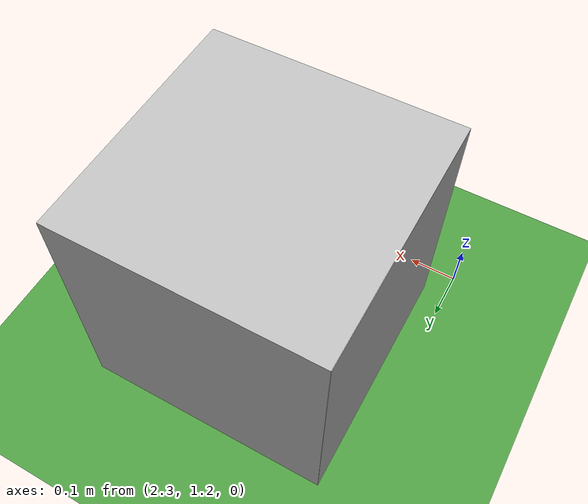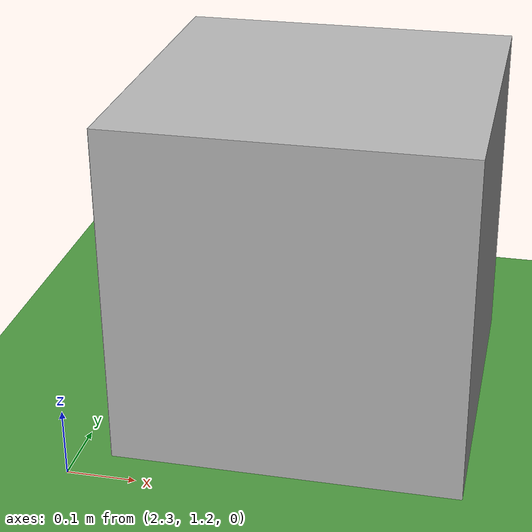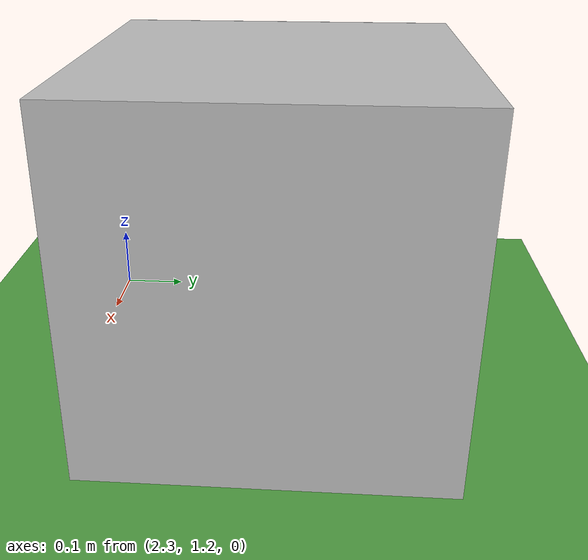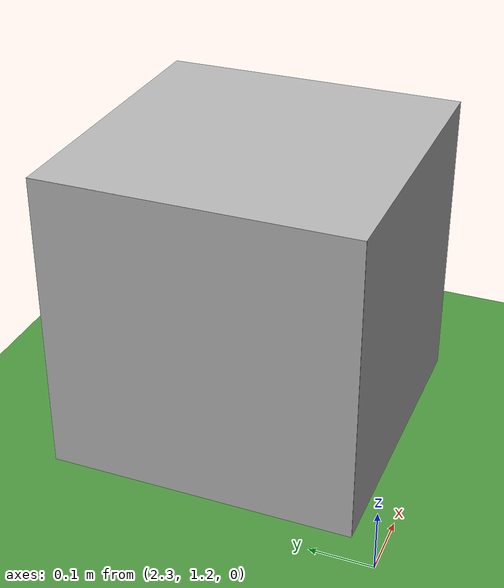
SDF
<?xml version="1.0" ?>
<sdf version="1.6">
  <world name="realistic_grass">
    <include>
      <uri>model://sun</uri>
    </include>
    <include>
      <uri>model://ground_plane</uri>
    </include>
    <include>
      <uri>model://cube_marker</uri>
      <pose>2.598 1.5 0 0 0 0</pose>
    </include>

  <physics name="default_physics" type="ode">
    <max_step_size>0.0005</max_step_size>
    <real_time_update_rate>2000</real_time_update_rate>
    <gravity>0 0 -9.81</gravity>
    <ode>
      <solver>
        <type>quick</type>
        <iters>50</iters>
        <sor>1.3</sor>
      </solver>
      <constraints>
        <cfm>1e-5</cfm>
        <erp>0.8</erp>
        <contact_max_correcting_vel>100.0</contact_max_correcting_vel>
        <contact_surface_layer>0.001</contact_surface_layer>
      </constraints>
    </ode>
  </physics>

    <model name="grass_plane">
      <static>true</static>
      <link name="link">
        <visual name="visual">
          <geometry>
            <plane>
              <normal>0 0 1</normal>
              <size>100 100</size>
            </plane>
          </geometry>
          <material>
            <script>
              <uri>file://$HOME/gazebo/media/materials/scripts</uri>
              <uri>file://$HOME/gazebo/media/materials/textures</uri>
              <name>Custom/Grass</name>
            </script>
          </material>
        </visual>
        <collision name="collision">
          <geometry>
            <plane>
              <normal>0 0 1</normal>
              <size>100 100</size>
            </plane>
          </geometry>
        </collision>
      </link>
    </model>
  </world>
</sdf>

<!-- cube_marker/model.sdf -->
<sdf version="1.6">
  <model name="cube_marker">
    <static>true</static>
    <link name="cube_link">
      <pose>0 0 0.25 0 0 1.570796327</pose> <!-- 2m in front, rotated to face drone -->

      <collision name="collision">
        <geometry>
          <box>
            <size>0.5 0.5 0.5</size> <!-- 500mm cube -->
          </box>
        </geometry>
      </collision>

      <!-- 🖼 The FRONT face with the PNG -->
      <visual name="textured_face">
        <pose>0 0.25 0 0 0 0</pose>
        <geometry>
          <box>
            <size>0.5 0.001 0.5</size>
          </box>
        </geometry>
        <material>
          <script>
            <uri>model://cube_marker/materials/scripts</uri>
            <uri>model://cube_marker/materials/textures</uri>
            <name>Gazebo/marker</name>
          </script>
        </material>
      </visual>

      <!-- ⬛ The main black cube -->
      <visual name="black_cube">
        <geometry>
          <box>
            <size>0.5 0.5 0.5</size>
          </box>
        </geometry>
        <material>
          <script>
            <uri>model://cube_marker/materials/scripts</uri>
            <uri>model://cube_marker/materials/textures</uri>
            <name>Gazebo/carbon</name>
          </script>
        </material>
      </visual>
    </link>
  </model>
</sdf>
